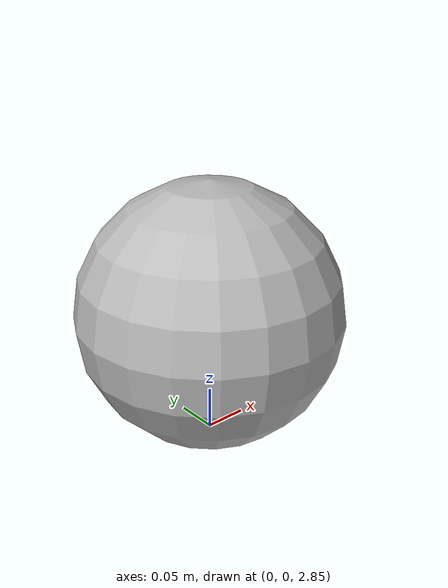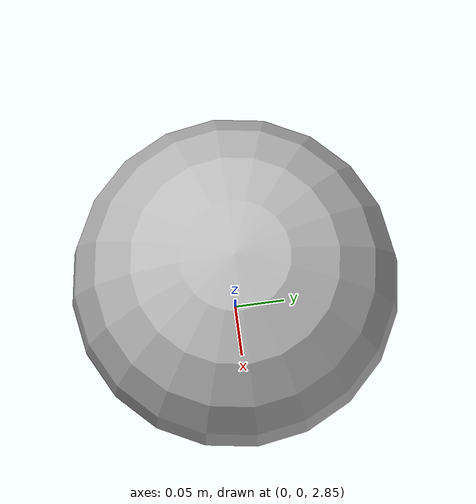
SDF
<?xml version="1.0"?>

<sdf version="1.11">

    <world name="tutorial_controlboard">
        <physics type="ignored">
            <dart>
                <collision_detector>dart</collision_detector>
            </dart>
        </physics>
        <plugin
            filename="gz-sim-physics-system"
            name="gz::sim::systems::Physics">
            <engine>
                <filename>gz-physics-dartsim-plugin</filename>
            </engine>
        </plugin>
        <plugin
            filename="gz-sim-user-commands-system"
            name="gz::sim::systems::UserCommands">
        </plugin>
        <plugin
            filename="gz-sim-sensors-system"
            name="gz::sim::systems::Sensors">
        </plugin>
        <plugin
            filename="gz-sim-scene-broadcaster-system"
            name="gz::sim::systems::SceneBroadcaster">
        </plugin>
        <light type="directional" name="sun">
            <cast_shadows>true</cast_shadows>
            <pose>0 0 10 0 0 0</pose>
            <diffuse>0.8 0.8 0.8 1</diffuse>
            <specular>0.2 0.2 0.2 1</specular>
            <attenuation>
                <range>1000</range>
                <constant>0.9</constant>
                <linear>0.01</linear>
                <quadratic>0.001</quadratic>
            </attenuation>
            <direction>-0.5 0.1 -0.9</direction>
        </light>

        <model name="ground_plane">
            <static>true</static>
            <link name="link">
                <collision name="collision">
                    <geometry>
                        <plane>
                            <normal>0 0 1</normal>
                            <size>100 100</size>
                        </plane>
                    </geometry>
                    <surface>
                        <bounce>
                            <restitution_coefficient>1.0</restitution_coefficient>
                        </bounce>
                    </surface>
                </collision>
                <visual name="visual">
                    <geometry>
                        <plane>
                            <normal>0 0 1</normal>
                            <size>100 100</size>
                        </plane>
                    </geometry>
                    <material>
                        <ambient>0.8 0.8 0.8 1</ambient>
                        <diffuse>0.8 0.8 0.8 1</diffuse>
                        <specular>0.8 0.8 0.8 1</specular>
                    </material>
                </visual>
            </link>
        </model>

        <model name="sphere">
            <link name="sphere_link">
                <visual name="visual">
                    <geometry>
                        <sphere>
                            <radius>0.15</radius>
                        </sphere>
                    </geometry>
                    <pose>0 0 3.0 0 0 0</pose>
                </visual>
                <collision name="collision">
                    <geometry>
                        <sphere>
                            <radius>0.15</radius>
                        </sphere>
                    </geometry>
                    <pose>0 0 3.0 0 0 0</pose>
                    <surface>
                        <bounce>
                            <restitution_coefficient>1.0</restitution_coefficient>
                        </bounce>
                    </surface>
                </collision>
                <inertial>
                    <density>1000</density>
                </inertial>
            </link>
        </model>
    </world>
</sdf>
